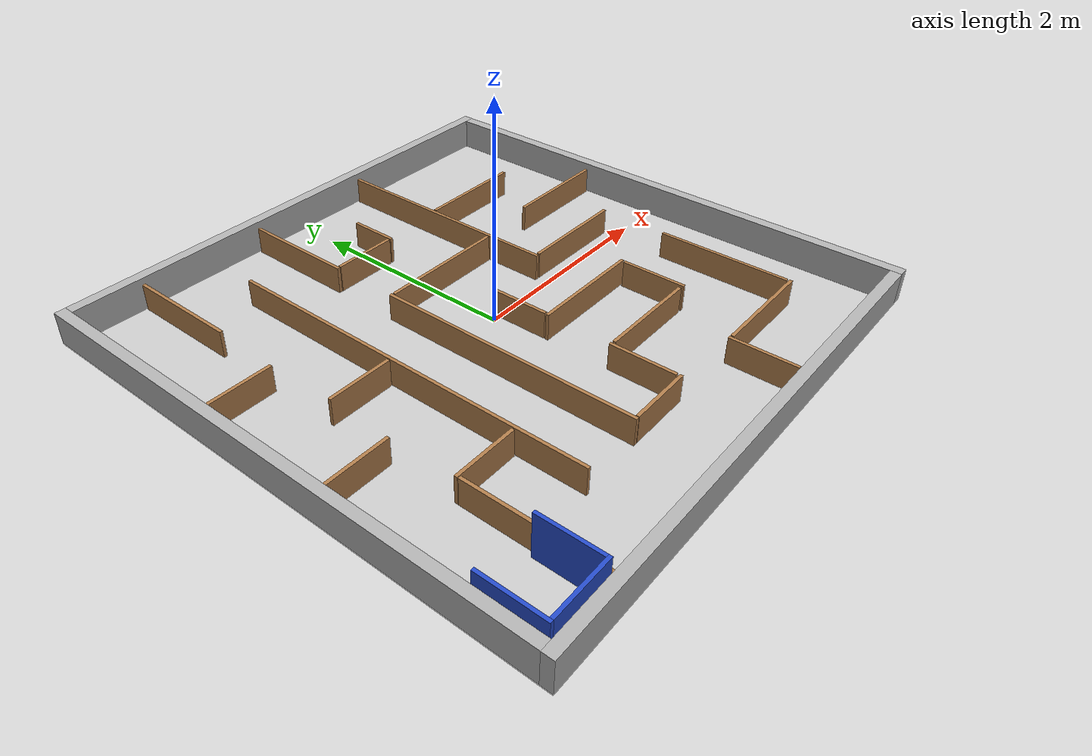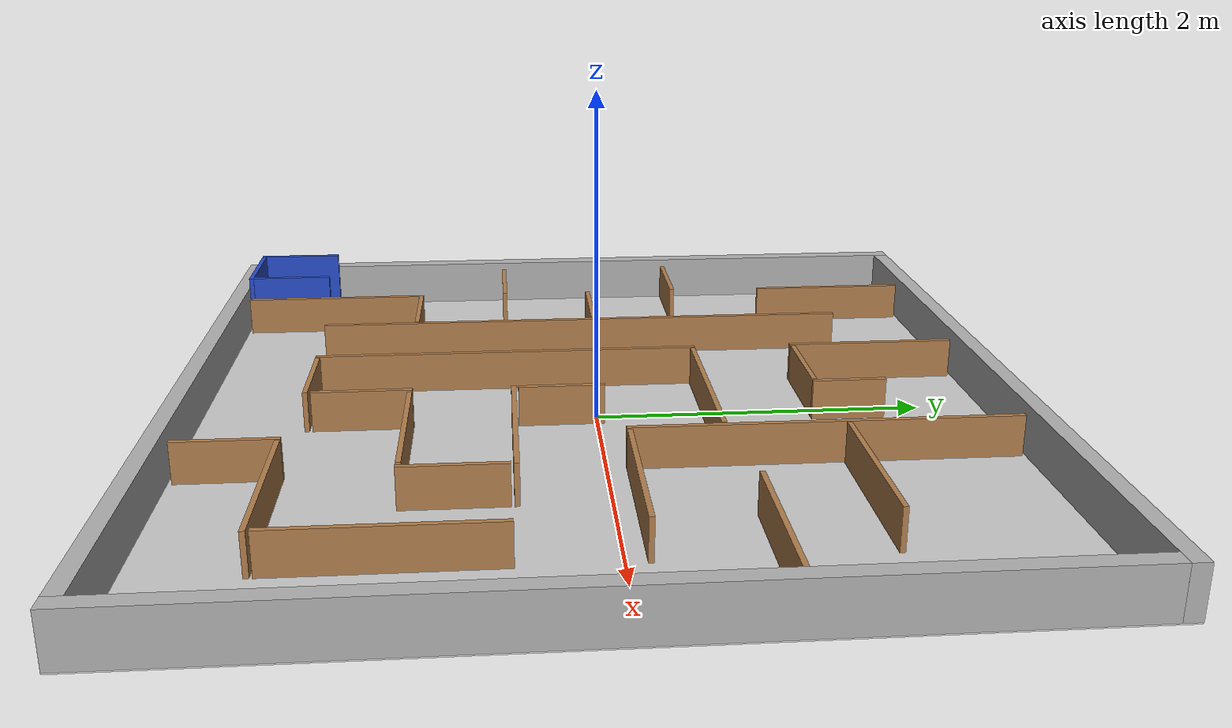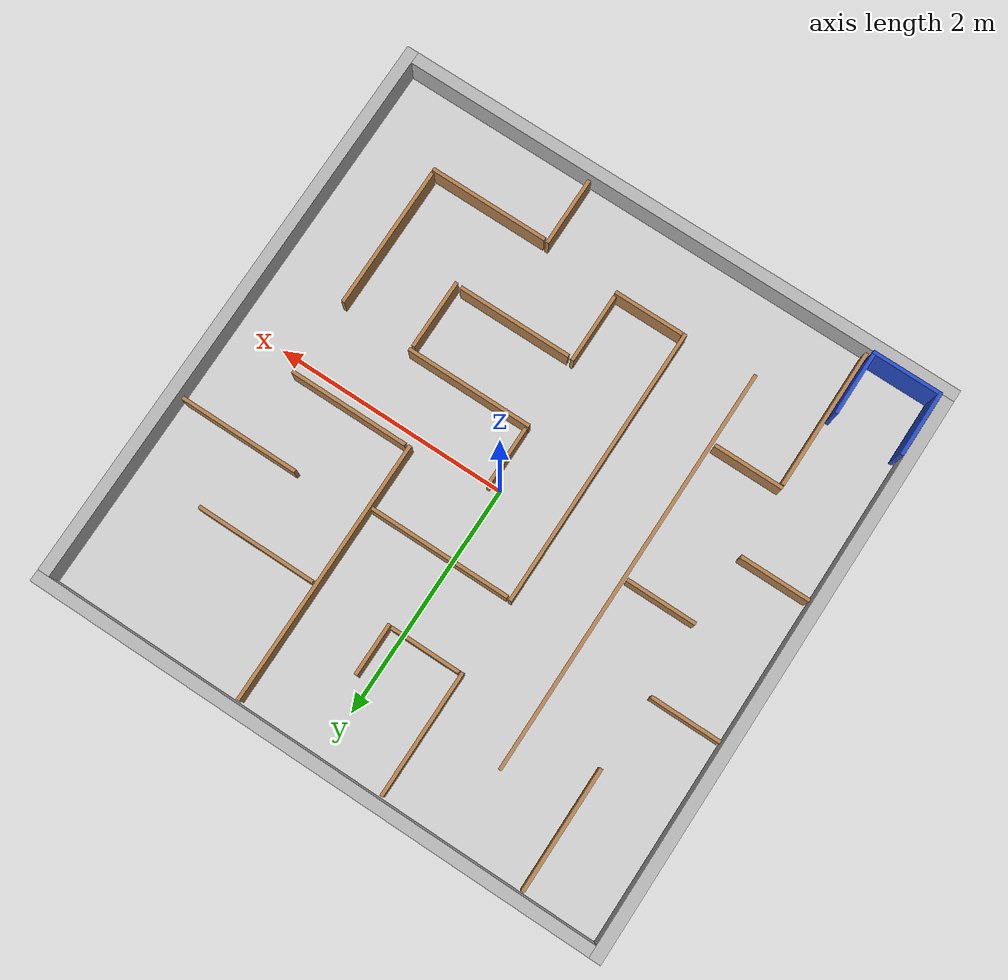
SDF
<sdf version="1.6">
 <world name="default">
  <light name="sun" type="directional">
   <pose>0 0 10 0 -0 0</pose>
   <diffuse>0.8 0.8 0.8 1</diffuse>
   <specular>0.2 0.2 0.2 1</specular>
   <attenuation>
    <range>1000</range>
    <constant>0.9</constant>
    <linear>0.01</linear>
    <quadratic>0.001</quadratic>
   </attenuation>
   <direction>-0.5 0.1 -0.9</direction>
  </light>
  <gravity>0 0 -9.8</gravity>
  <magnetic_field>6e-06 2.3e-05 -4.2e-05</magnetic_field>
  <atmosphere type="adiabatic"/>
  <physics name="default_physics" default="0" type="ode">
   <max_step_size>0.001</max_step_size>
   <real_time_factor>1</real_time_factor>
   <real_time_update_rate>1000</real_time_update_rate>
  </physics>
  <scene><ambient>0.4 0.4 0.4 1</ambient><background>0.7 0.7 0.7 1</background><shadows>1</shadows></scene>
  <spherical_coordinates>
   <surface_model>EARTH_WGS84</surface_model>
   <latitude_deg>0</latitude_deg>
   <longitude_deg>0</longitude_deg>
   <elevation>0</elevation>
   <heading_deg>0</heading_deg>
  </spherical_coordinates>
  <include><uri>model://arena_walls</uri></include>
  <include><uri>model://task3_maze</uri></include>
 </world>
</sdf>

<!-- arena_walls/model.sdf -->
<sdf version='1.6'>
  <model name='arena_walls'>
    <pose frame=''>0 0 0.15 0 0 0</pose>
    <link name='Right_Wall'>
      <collision name='Right_Wall_Collision'>
        <geometry>
          <box>
            <size>4.90 0.10 0.3</size>
          </box>
        </geometry>
        <pose frame=''>0 0 0 0 0 0</pose>
      </collision>
      <visual name='Right_Wall_Visual'>
        <pose frame=''>0 0 0 0 0 0</pose>
        <geometry>
          <box>
            <size>4.90 0.10 0.3</size>
          </box>
        </geometry>
        <material>
          <diffuse>0.7 0.7 0.7 1</diffuse>
          <pbr>
            <metal>
              <metalness>0.0</metalness>
              <roughness>0.9</roughness>
            </metal>
          </pbr>
        </material>
      </visual>
      <pose frame=''>0.05 2.45 0 0 0 0</pose>
    </link>
    <link name='Back_Wall'>
      <collision name='Back_Wall_Collision'>
        <geometry>
          <box>
            <size>4.90 0.10 0.3</size>
          </box>
        </geometry>
        <pose frame=''>0 0 0 0 0 0</pose>
      </collision>
      <visual name='Back_Wall_Visual'>
        <pose frame=''>0 0 0 0 0 0</pose>
        <geometry>
          <box>
            <size>4.90 0.10 0.3</size>
          </box>
        </geometry>
        <material>
          <diffuse>0.7 0.7 0.7 1</diffuse>
          <pbr>
            <metal>
              <metalness>0.0</metalness>
              <roughness>0.9</roughness>
            </metal>
          </pbr>
        </material>
      </visual>
      <pose frame=''>-2.45 0.05 0 0 0 1.5708</pose>
    </link>
    <link name='Left_Wall'>
      <collision name='Left_Wall_Collision'>
        <geometry>
          <box>
            <size>4.90 0.10 0.3</size>
          </box>
        </geometry>
        <pose frame=''>0 0 0 0 0 0</pose>
      </collision>
      <visual name='Left_Wall_Visual'>
        <pose frame=''>0 0 0 0 0 0</pose>
        <geometry>
          <box>
            <size>4.90 0.10 0.3</size>
          </box>
        </geometry>
        <material>
          <diffuse>0.7 0.7 0.7 1</diffuse>
          <pbr>
            <metal>
              <metalness>0.0</metalness>
              <roughness>0.9</roughness>
            </metal>
          </pbr>
        </material>
      </visual>
      <pose frame=''>-0.05 -2.45 0 0 0 0</pose>
    </link>
    <link name='Front_Wall'>
      <collision name='Front_Wall_Collision'>
        <geometry>
          <box>
            <size>4.90 0.10 0.3</size>
          </box>
        </geometry>
        <pose frame=''>0 0 0 0 0 0</pose>
      </collision>
      <visual name='Front_Wall_Visual'>
        <pose frame=''>0 0 0 0 0 0</pose>
        <geometry>
          <box>
            <size>4.90 0.10 0.3</size>
          </box>
        </geometry>
        <material>
          <diffuse>0.7 0.7 0.7 1</diffuse>
          <pbr>
            <metal>
              <metalness>0.0</metalness>
              <roughness>0.9</roughness>
            </metal>
          </pbr>
        </material>
      </visual>
      <pose frame=''>2.45 -0.05 0 0 0 1.5708</pose>
    </link>
    <static>1</static>
  </model>
</sdf>

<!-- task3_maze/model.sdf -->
<sdf version="1.4">
<model name="task3_maze">
  <static>true</static>
    <link name="floor">
      <collision name="collision">
        <geometry>
          <plane>
            <normal>0 0 1</normal>
            <size>5.0 5.0</size>
          </plane>
        </geometry>
        <surface>
          <friction>
            <ode>
              <mu>100</mu>
              <mu2>50</mu2>
            </ode>
          </friction>
        </surface>
      </collision>
      <visual name="visual">
        <cast_shadows>false</cast_shadows>
        <geometry>
          <plane>
            <normal>0 0 1</normal>
            <size>5.0 5.0</size>
          </plane>
        </geometry>
        <material>
          <script>
            <uri>model://task3_maze/materials/scripts</uri>
            <uri>model://task3_maze/materials/textures</uri>
            <name>MazeNavFloor/Image</name>
          </script>
        </material>
      </visual>
    </link>
    <link name='SZ_Right_Wall'>
      <pose frame=''>-2.37275 -2.09516 0.2 0 0 1.5708</pose>
      <collision name='Right_Wall_Collision'>
        <geometry>
          <box>
            <size>0.57 0.03 0.4</size>
          </box>
        </geometry>
      </collision>
      <visual name='Right_Wall_Visual'>
        <geometry>
          <box>
            <size>0.57 0.03 0.4</size>
          </box>
        </geometry>
        <material>
          <script>
            <uri>file://media/materials/scripts/gazebo.material</uri>
            <name>Gazebo/Blue</name>
          </script>
        </material>
      </visual>
    </link>
    <link name='SZ_Back_Wall'>
      <pose frame=''>-2.07275 -2.36516 0.2 0 0 0</pose>
      <collision name='Back_Wall_Collision'>
        <geometry>
          <box>
            <size>0.57 0.03 0.4</size>
          </box>
        </geometry>
      </collision>
      <visual name='Back_Wall_Visual'>
        <geometry>
          <box>
            <size>0.57 0.03 0.4</size>
          </box>
        </geometry>
        <material>
          <script>
            <uri>file://media/materials/scripts/gazebo.material</uri>
            <name>Gazebo/Blue</name>
          </script>
        </material>
      </visual>
    </link>
    <link name='SZ_Left_Wall'>
      <pose frame=''>-1.80275 -2.08016 0.2 0 0 1.5708</pose>
      <collision name='Left_Wall_Collision'>
        <geometry>
          <box>
            <size>0.54 0.03 0.4</size>
          </box>
        </geometry>
      </collision>
      <visual name='Left_Wall_Visual'>
        <geometry>
          <box>
            <size>0.54 0.03 0.4</size>
          </box>
        </geometry>
        <material>
          <script>
            <uri>file://media/materials/scripts/gazebo.material</uri>
            <name>Gazebo/Blue</name>
          </script>
        </material>
      </visual>
    </link>
    <link name='Wall_00'>
      <collision name='Wall_00_Collision'>
        <geometry>
          <box>
            <size>1.21 0.03 0.25</size>
          </box>
        </geometry>
      </collision>
      <visual name='Wall_00_Visual'>
        <geometry>
          <box>
            <size>1.21 0.03 0.25</size>
          </box>
        </geometry>
        <material>
          <script>
            <uri>file://media/materials/scripts/gazebo.material</uri>
            <name>Gazebo/Wood</name>
          </script>
          <ambient>1 1 1 1</ambient>
        </material>
      </visual>
      <pose frame=''>-1.762 -1.775 0.125 0 0 1.5708</pose>
    </link>
    <link name='Wall_01'>
      <collision name='Wall_01_Collision'>
        <geometry>
          <box>
            <size>0.60 0.03 0.25</size>
          </box>
        </geometry>
      </collision>
      <visual name='Wall_01_Visual'>
        <geometry>
          <box>
            <size>0.60 0.03 0.25</size>
          </box>
        </geometry>
        <material>
          <script>
            <uri>file://media/materials/scripts/gazebo.material</uri>
            <name>Gazebo/Wood</name>
          </script>
          <ambient>1 1 1 1</ambient>
        </material>
      </visual>
      <pose frame=''>-1.476 -1.148 0.125 0 0 0</pose>
    </link>
    <link name='Wall_02'>
      <collision name='Wall_02_Collision'>
        <geometry>
          <box>
            <size>3.52 0.03 0.25</size>
          </box>
        </geometry>
      </collision>
      <visual name='Wall_02_Visual'>
        <geometry>
          <box>
            <size>3.52 0.03 0.25</size>
          </box>
        </geometry>
        <material>
          <script>
            <uri>file://media/materials/scripts/gazebo.material</uri>
            <name>Gazebo/Wood</name>
          </script>
          <ambient>1 1 1 1</ambient>
        </material>
      </visual>
      <pose frame=''>-1.149 -0.013 0.125 0 0 1.5708</pose>
    </link>
    <link name='Wall_03'>
      <collision name='Wall_03_Collision'>
        <geometry>
          <box>
            <size>0.60 0.03 0.25</size>
          </box>
        </geometry>
      </collision>
      <visual name='Wall_03_Visual'>
        <geometry>
          <box>
            <size>0.60 0.03 0.25</size>
          </box>
        </geometry>
        <material>
          <script>
            <uri>file://media/materials/scripts/gazebo.material</uri>
            <name>Gazebo/Wood</name>
          </script>
          <ambient>1 1 1 1</ambient>
        </material>
      </visual>
      <pose frame=''>-2.085 -0.541 0.125 0 0 0</pose>
    </link>
    <link name='Wall_04'>
      <collision name='Wall_04_Collision'>
        <geometry>
          <box>
            <size>0.60 0.03 0.25</size>
          </box>
        </geometry>
      </collision>
      <visual name='Wall_04_Visual'>
        <geometry>
          <box>
            <size>0.60 0.03 0.25</size>
          </box>
        </geometry>
        <material>
          <script>
            <uri>file://media/materials/scripts/gazebo.material</uri>
            <name>Gazebo/Wood</name>
          </script>
          <ambient>1 1 1 1</ambient>
        </material>
      </visual>
      <pose frame=''>-1.473 0.067 0.125 0 0 0</pose>
    </link>
    <link name='Wall_05'>
      <collision name='Wall_05_Collision'>
        <geometry>
          <box>
            <size>0.60 0.03 0.25</size>
          </box>
        </geometry>
      </collision>
      <visual name='Wall_05_Visual'>
        <geometry>
          <box>
            <size>0.60 0.03 0.25</size>
          </box>
        </geometry>
        <material>
          <script>
            <uri>file://media/materials/scripts/gazebo.material</uri>
            <name>Gazebo/Wood</name>
          </script>
          <ambient>1 1 1 1</ambient>
        </material>
      </visual>
      <pose frame=''>-2.085 0.697 0.125 0 0 0</pose>
    </link>
    <link name='Wall_06'>
      <collision name='Wall_06_Collision'>
        <geometry>
          <box>
            <size>1.05 0.03 0.25</size>
          </box>
        </geometry>
      </collision>
      <visual name='Wall_06_Visual'>
        <geometry>
          <box>
            <size>1.05 0.03 0.25</size>
          </box>
        </geometry>
        <material>
          <script>
            <uri>file://media/materials/scripts/gazebo.material</uri>
            <name>Gazebo/Wood</name>
          </script>
          <ambient>1 1 1 1</ambient>
        </material>
      </visual>
      <pose frame=''>-1.761 1.856 0.125 0 0 1.5708</pose>
    </link>
    <link name='Wall_07'>
      <collision name='Wall_07_Collision'>
        <geometry>
          <box>
            <size>1.07 0.03 0.25</size>
          </box>
        </geometry>
      </collision>
      <visual name='Wall_07_Visual'>
        <geometry>
          <box>
            <size>1.07 0.03 0.25</size>
          </box>
        </geometry>
        <material>
          <script>
            <uri>file://media/materials/scripts/gazebo.material</uri>
            <name>Gazebo/Wood</name>
          </script>
          <ambient>1 1 1 1</ambient>
        </material>
      </visual>
      <pose frame=''>-0.535 1.84 0.125 0 0 1.5708</pose>
    </link>
    <link name='Wall_08'>
      <collision name='Wall_08_Collision'>
        <geometry>
          <box>
            <size>0.60 0.03 0.25</size>
          </box>
        </geometry>
      </collision>
      <visual name='Wall_08_Visual'>
        <geometry>
          <box>
            <size>0.60 0.03 0.25</size>
          </box>
        </geometry>
        <material>
          <script>
            <uri>file://media/materials/scripts/gazebo.material</uri>
            <name>Gazebo/Wood</name>
          </script>
          <ambient>1 1 1 1</ambient>
        </material>
      </visual>
      <pose frame=''>-0.212 1.320 0.125 0 0 0</pose>
    </link>
    <link name='Wall_09'>
      <collision name='Wall_09_Collision'>
        <geometry>
          <box>
            <size>0.45 0.03 0.25</size>
          </box>
        </geometry>
      </collision>
      <visual name='Wall_09_Visual'>
        <geometry>
          <box>
            <size>0.45 0.03 0.25</size>
          </box>
        </geometry>
        <material>
          <script>
            <uri>file://media/materials/scripts/gazebo.material</uri>
            <name>Gazebo/Wood</name>
          </script>
          <ambient>1 1 1 1</ambient>
        </material>
      </visual>
      <pose frame=''>0.113 1.530 0.125 0 0 1.5708</pose>
    </link>
    <link name='Wall_0A'>
      <collision name='Wall_0A_Collision'>
        <geometry>
          <box>
            <size>2.43 0.03 0.25</size>
          </box>
        </geometry>
      </collision>
      <visual name='Wall_0A_Visual'>
        <geometry>
          <box>
            <size>2.43 0.03 0.25</size>
          </box>
        </geometry>
        <material>
          <script>
            <uri>file://media/materials/scripts/gazebo.material</uri>
            <name>Gazebo/Wood</name>
          </script>
          <ambient>1 1 1 1</ambient>
        </material>
      </visual>
      <pose frame=''>-0.535 -0.538 0.125 0 0 1.5708</pose>
    </link>
    <link name='Wall_0B'>
      <collision name='Wall_0B_Collision'>
        <geometry>
          <box>
            <size>0.60 0.03 0.25</size>
          </box>
        </geometry>
      </collision>
      <visual name='Wall_0B_Visual'>
        <geometry>
          <box>
            <size>0.60 0.03 0.25</size>
          </box>
        </geometry>
        <material>
          <script>
            <uri>file://media/materials/scripts/gazebo.material</uri>
            <name>Gazebo/Wood</name>
          </script>
          <ambient>1 1 1 1</ambient>
        </material>
      </visual>
      <pose frame=''>-0.212 -1.738 0.125 0 0 0</pose>
    </link>
    <link name='Wall_0C'>
      <collision name='Wall_0C_Collision'>
        <geometry>
          <box>
            <size>0.60 0.03 0.25</size>
          </box>
        </geometry>
      </collision>
      <visual name='Wall_0C_Visual'>
        <geometry>
          <box>
            <size>0.60 0.03 0.25</size>
          </box>
        </geometry>
        <material>
          <script>
            <uri>file://media/materials/scripts/gazebo.material</uri>
            <name>Gazebo/Wood</name>
          </script>
          <ambient>1 1 1 1</ambient>
        </material>
      </visual>
      <pose frame=''>0.073 -1.406 0.125 0 0 1.5708</pose>
    </link>
    <link name='Wall_0D'>
      <collision name='Wall_0D_Collision'>
        <geometry>
          <box>
            <size>0.98 0.03 0.25</size>
          </box>
        </geometry>
      </collision>
      <visual name='Wall_0D_Visual'>
        <geometry>
          <box>
            <size>0.98 0.03 0.25</size>
          </box>
        </geometry>
        <material>
          <script>
            <uri>file://media/materials/scripts/gazebo.material</uri>
            <name>Gazebo/Wood</name>
          </script>
          <ambient>1 1 1 1</ambient>
        </material>
      </visual>
      <pose frame=''>0.602 -1.121 0.125 0 0 0</pose>
    </link>
    <link name='Wall_0E'>
      <collision name='Wall_0E_Collision'>
        <geometry>
          <box>
            <size>0.60 0.03 0.25</size>
          </box>
        </geometry>
      </collision>
      <visual name='Wall_0E_Visual'>
        <geometry>
          <box>
            <size>0.60 0.03 0.25</size>
          </box>
        </geometry>
        <material>
          <script>
            <uri>file://media/materials/scripts/gazebo.material</uri>
            <name>Gazebo/Wood</name>
          </script>
          <ambient>1 1 1 1</ambient>
        </material>
      </visual>
      <pose frame=''>1.139 -0.836 0.125 0 0 1.5708</pose>
    </link>
    <link name='Wall_0F'>
      <collision name='Wall_0F_Collision'>
        <geometry>
          <box>
            <size>1.09 0.03 0.25</size>
          </box>
        </geometry>
      </collision>
      <visual name='Wall_0F_Visual'>
        <geometry>
          <box>
            <size>1.09 0.03 0.25</size>
          </box>
        </geometry>
        <material>
          <script>
            <uri>file://media/materials/scripts/gazebo.material</uri>
            <name>Gazebo/Wood</name>
          </script>
          <ambient>1 1 1 1</ambient>
        </material>
      </visual>
      <pose frame=''>0.609 -0.505 0.125 0 0 0</pose>
    </link>
    <link name='Wall_10'>
      <collision name='Wall_10_Collision'>
        <geometry>
          <box>
            <size>0.52 0.03 0.25</size>
          </box>
        </geometry>
      </collision>
      <visual name='Wall_10_Visual'>
        <geometry>
          <box>
            <size>0.52 0.03 0.25</size>
          </box>
        </geometry>
        <material>
          <script>
            <uri>file://media/materials/scripts/gazebo.material</uri>
            <name>Gazebo/Wood</name>
          </script>
          <ambient>1 1 1 1</ambient>
        </material>
      </visual>
      <pose frame=''>0.079 -0.217 0.125 0 0 1.5708</pose>
    </link>
    <link name='Wall_11'>
      <collision name='Wall_11_Collision'>
        <geometry>
          <box>
            <size>1.21 0.03 0.25</size>
          </box>
        </geometry>
      </collision>
      <visual name='Wall_11_Visual'>
        <geometry>
          <box>
            <size>1.21 0.03 0.25</size>
          </box>
        </geometry>
        <material>
          <script>
            <uri>file://media/materials/scripts/gazebo.material</uri>
            <name>Gazebo/Wood</name>
          </script>
          <ambient>1 1 1 1</ambient>
        </material>
      </visual>
      <pose frame=''>0.099 0.662 0.125 0 0 0</pose>
    </link>
    <link name='Wall_12'>
      <collision name='Wall_12_Collision'>
        <geometry>
          <box>
            <size>2.27 0.03 0.25</size>
          </box>
        </geometry>
      </collision>
      <visual name='Wall_12_Visual'>
        <geometry>
          <box>
            <size>2.27 0.03 0.25</size>
          </box>
        </geometry>
        <material>
          <script>
            <uri>file://media/materials/scripts/gazebo.material</uri>
            <name>Gazebo/Wood</name>
          </script>
          <ambient>1 1 1 1</ambient>
        </material>
      </visual>
      <pose frame=''>0.730 1.245 0.125 0 0 1.5708</pose>
    </link>
    <link name='Wall_13'>
      <collision name='Wall_13_Collision'>
        <geometry>
          <box>
            <size>0.60 0.03 0.25</size>
          </box>
        </geometry>
      </collision>
      <visual name='Wall_13_Visual'>
        <geometry>
          <box>
            <size>0.60 0.03 0.25</size>
          </box>
        </geometry>
        <material>
          <script>
            <uri>file://media/materials/scripts/gazebo.material</uri>
            <name>Gazebo/Wood</name>
          </script>
          <ambient>1 1 1 1</ambient>
        </material>
      </visual>
      <pose frame=''>0.735 -2.076 0.125 0 0 1.5708</pose>
    </link>
    <link name='Wall_14'>
      <collision name='Wall_14_Collision'>
        <geometry>
          <box>
            <size>1.03 0.03 0.25</size>
          </box>
        </geometry>
      </collision>
      <visual name='Wall_14_Visual'>
        <geometry>
          <box>
            <size>1.03 0.03 0.25</size>
          </box>
        </geometry>
        <material>
          <script>
            <uri>file://media/materials/scripts/gazebo.material</uri>
            <name>Gazebo/Wood</name>
          </script>
          <ambient>1 1 1 1</ambient>
        </material>
      </visual>
      <pose frame=''>1.279 -1.791 0.125 0 0 0</pose>
    </link>
    <link name='Wall_15'>
      <collision name='Wall_15_Collision'>
        <geometry>
          <box>
            <size>1.23 0.03 0.25</size>
          </box>
        </geometry>
      </collision>
      <visual name='Wall_15_Visual'>
        <geometry>
          <box>
            <size>1.23 0.03 0.25</size>
          </box>
        </geometry>
        <material>
          <script>
            <uri>file://media/materials/scripts/gazebo.material</uri>
            <name>Gazebo/Wood</name>
          </script>
          <ambient>1 1 1 1</ambient>
        </material>
      </visual>
      <pose frame=''>1.779 -1.146 0.125 0 0 1.5708</pose>
    </link>
    <link name='Wall_16'>
      <collision name='Wall_16_Collision'>
        <geometry>
          <box>
            <size>1.03 0.03 0.25</size>
          </box>
        </geometry>
      </collision>
      <visual name='Wall_16_Visual'>
        <geometry>
          <box>
            <size>1.03 0.03 0.25</size>
          </box>
        </geometry>
        <material>
          <script>
            <uri>file://media/materials/scripts/gazebo.material</uri>
            <name>Gazebo/Wood</name>
          </script>
          <ambient>1 1 1 1</ambient>
        </material>
      </visual>
      <pose frame=''>1.279 0.125 0.125 0 0 0</pose>
    </link>
    <link name='Wall_17'>
      <collision name='Wall_17_Collision'>
        <geometry>
          <box>
            <size>1.03 0.03 0.25</size>
          </box>
        </geometry>
      </collision>
      <visual name='Wall_17_Visual'>
        <geometry>
          <box>
            <size>1.03 0.03 0.25</size>
          </box>
        </geometry>
        <material>
          <script>
            <uri>file://media/materials/scripts/gazebo.material</uri>
            <name>Gazebo/Wood</name>
          </script>
          <ambient>1 1 1 1</ambient>
        </material>
      </visual>
      <pose frame=''>1.855 0.747 0.125 0 0 0</pose>
    </link>
    <link name='Wall_18'>
      <collision name='Wall_18_Collision'>
        <geometry>
          <box>
            <size>1.03 0.03 0.25</size>
          </box>
        </geometry>
      </collision>
      <visual name='Wall_18_Visual'>
        <geometry>
          <box>
            <size>1.03 0.03 0.25</size>
          </box>
        </geometry>
        <material>
          <script>
            <uri>file://media/materials/scripts/gazebo.material</uri>
            <name>Gazebo/Wood</name>
          </script>
          <ambient>1 1 1 1</ambient>
        </material>
      </visual>
      <pose frame=''>1.274 1.360 0.125 0 0 0</pose>
    </link>
  </model>
</sdf>
